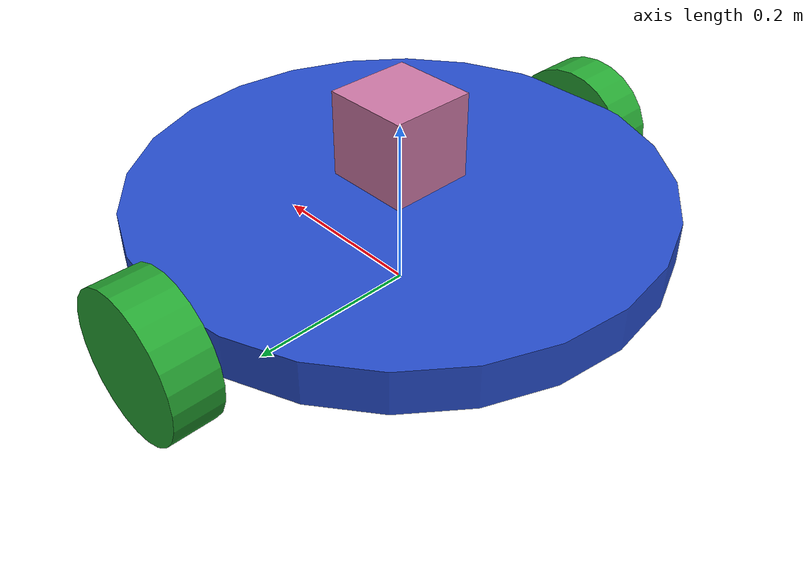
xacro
<?xml version='1.0'?>

<robot name="mobile_robot" xmlns:xacro="http://www.ros.org/wiki/xacro">

  <link name="robot_footprint"></link>
  <link name="base_link"></link>
  <xacro:include filename="$(find mobile_robot)/urdf/mobile_robot.gazebo" />

  <joint name="robot_base__joint" type="fixed">
    <origin xyz="0 0 0" rpy="0 0 0" />
    <parent link="robot_footprint"/>
    <child link="base_link" />
  </joint>
  <joint name="robot_footprint_joint" type="fixed">
    <origin xyz="0 0 0" rpy="0 0 0" />
    <parent link="base_link"/>
    <child link="chassis" />
  </joint>
  <link name='chassis'>
    <pose>0 0 0.1 0 0 0</pose>

    <inertial>
      <mass value="15.0"/>
      <origin xyz="0.0 0 0" rpy=" 0 0 0"/>
      <inertia
          ixx="0.1" ixy="0" ixz="0"
          iyy="0.1" iyz="0"
          izz="0.1"
      />
    </inertial>

    <collision name='collision'>
      <origin xyz="0 0 0.11" rpy=" 0 0 0"/>
      <geometry>
        <cylinder length=".05" radius="0.3"/>
      </geometry>
    </collision>

    <visual name='chassis_visual'>
      <origin xyz="0 0 0.11" rpy=" 0 0 0"/>
      <geometry>
        <cylinder length=".05" radius="0.3"/>
      </geometry>
    </visual>
  </link>

  <link name='right_wheel'>
    <inertial>
      <mass value="5.0"/>
      <origin xyz="0 0 0.08" rpy="0 1.5707 1.5707"/>
      <inertia
          ixx="0.1" ixy="0" ixz="0"
          iyy="0.1" iyz="0"
          izz="0.1"
      />
    </inertial>

    <collision name='right_wheel_collision'>
      <origin xyz="0 -0.05 0.08" rpy="0 1.5707 1.5707"/>
      <geometry>
        <cylinder length=".055" radius="0.0825"/>
      </geometry>
    </collision>

    <visual name='right_wheel_visual'>
      <origin xyz="0 -0.05 0.08" rpy="0 1.5707 1.5707"/>
      <geometry>
        <cylinder length=".055" radius="0.0825"/>
      </geometry>
    </visual>
  </link>

  <joint type="continuous" name="right_wheel_hinge">
    <origin xyz="0 -0.27 0" rpy="0 0 0"/>
    <child link="right_wheel"/>
    <parent link="chassis"/>
    <axis xyz="0 1 0" rpy="0 0 0"/>
    <limit effort="10000" velocity="1000"/>
    <dynamics damping="1.0" friction="1.0"/>
  </joint>

  <link name='left_wheel'>
    <inertial>
      <mass value="5.0"/>
      <origin xyz="0 0 0.08" rpy="0 1.5707 1.5707"/>
      <inertia
          ixx="0.1" ixy="0" ixz="0"
          iyy="0.1" iyz="0"
          izz="0.1"
      />
    </inertial>

    <collision name='left_wheel_collision'>
      <origin xyz="0 0.05 0.08" rpy="0 1.5707 1.5707"/>
      <geometry>
        <cylinder length=".055" radius="0.0825"/>
      </geometry>
    </collision>

    <visual name='left_wheel_visual'>
      <origin xyz="0 0.05 0.08" rpy="0 1.5707 1.5707"/>
      <geometry>
        <cylinder length=".055" radius="0.0825"/>
      </geometry>
    </visual>
  </link>

  <joint type="continuous" name="left_wheel_hinge">
    <origin xyz="0 0.27 0" rpy="0 0 0"/>
    <child link="left_wheel"/>
    <parent link="chassis"/>
    <axis xyz="0 1 0" rpy="0 0 0"/>
    <limit effort="10000" velocity="1000"/>
    <dynamics damping="1.0" friction="1.0"/>
  </joint>

  <link name='camera'>
    <inertial>
      <mass value=".1"/>
      <origin xyz="0 0 0" rpy="0 0 0"/>
      <inertia
          ixx="1e-6" ixy="0" ixz="0"
          iyy="1e-6" iyz="0"
          izz="1e-6"
      />
    </inertial>

    <collision name='camera_collision'>
      <origin xyz="0 0 0" rpy="0 0 0"/>
      <geometry>
        <box size=".05 .05 .05"/>
      </geometry>
    </collision>

    <visual name='camera_visual'>
      <origin xyz="0 0 0" rpy="0 0 0"/>
      <geometry>
        <box size=".05 .05 .05"/>
      </geometry>
    </visual>
  </link>

  <joint name="camera_joint" type="fixed">
    <origin xyz=".225 0 0" rpy="0 0 0"/>
    <child link="camera"/>
    <parent link="chassis"/>
    <axis xyz="0 1 0" rpy="0 0 0"/>
  </joint>

  <link name='hokuyo'>
    <inertial>
      <mass value="1e-5"/>
      <origin xyz="0 0 0" rpy="0 0 0"/>
      <inertia
          ixx="1e-6" ixy="0" ixz="0"
          iyy="1e-6" iyz="0"
          izz="1e-6"
      />
    </inertial>

    <collision name='hokuyo_collision'>
      <origin xyz="0 0 0.11" rpy="0 0 0"/>
      <geometry>
        <box size=".1 .1 .1"/>
      </geometry>
    </collision>

    <visual name='hokuyo_visual'>
      <origin xyz="0 0 0.11" rpy="0 0 0"/>
      <geometry>
         <box size=".1 .1 .1"/>
      </geometry>
    </visual>
  </link>

  <joint name="hokuyo_joint" type="fixed">
    <origin xyz="0 0 0.08" rpy="0 0 0"/>
    <child link="hokuyo"/>
    <parent link="chassis"/>
    <axis xyz="0 1 0" rpy="0 0 0"/>
  </joint>
<link name='laser'>
</link>
 <joint name="laser_joint" type="fixed">
    <origin xyz="0 0 0" rpy="0 0 3.140"/>
    <child link="laser"/>
    <parent link="hokuyo"/>
    <axis xyz="0 1 0" rpy="0 0 0"/>
  </joint>

  <gazebo reference="chassis">
    <material>Gazebo/Blue</material>
  </gazebo>
  <gazebo reference="left_wheel">
    <material>Gazebo/Green</material>
  </gazebo>
  <gazebo reference="right_wheel">
    <material>Gazebo/Green</material>
  </gazebo>
  <gazebo reference="camera">
    <material>Gazebo/Red</material>
  </gazebo>

</robot>
